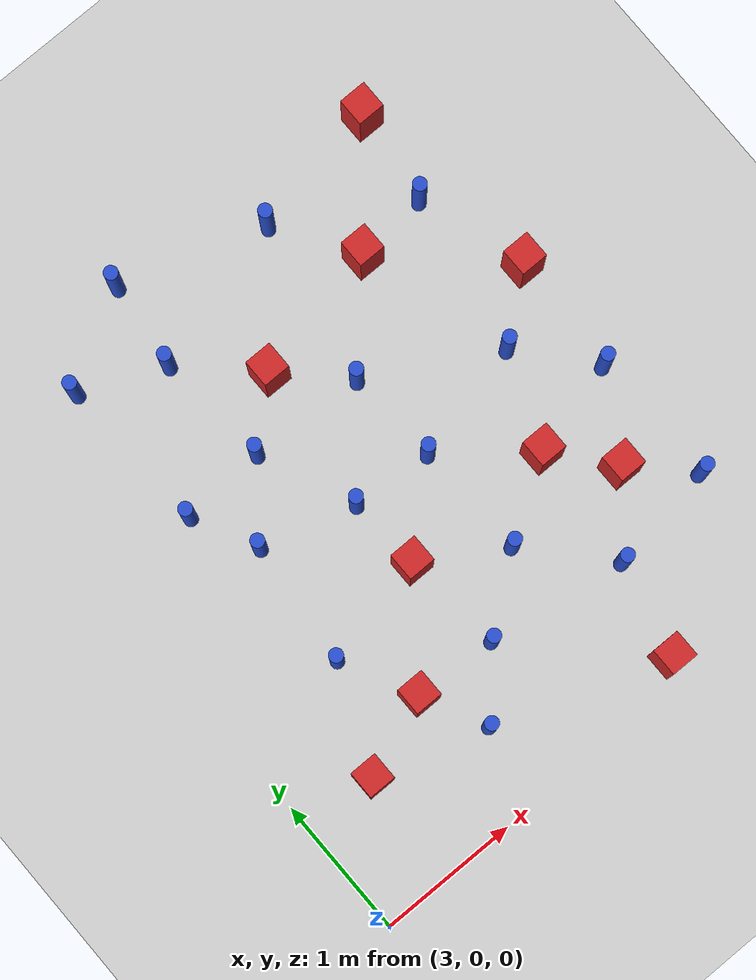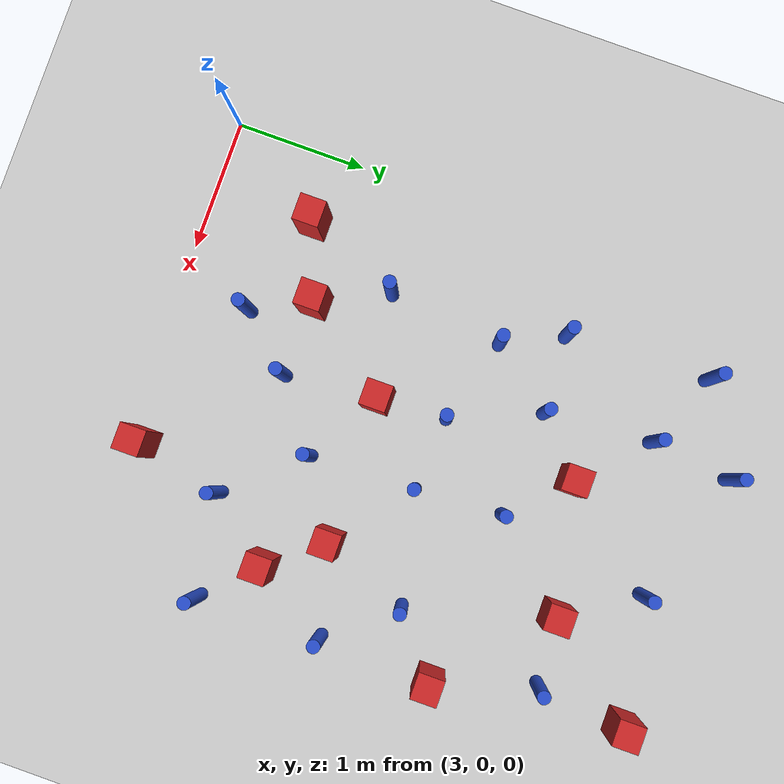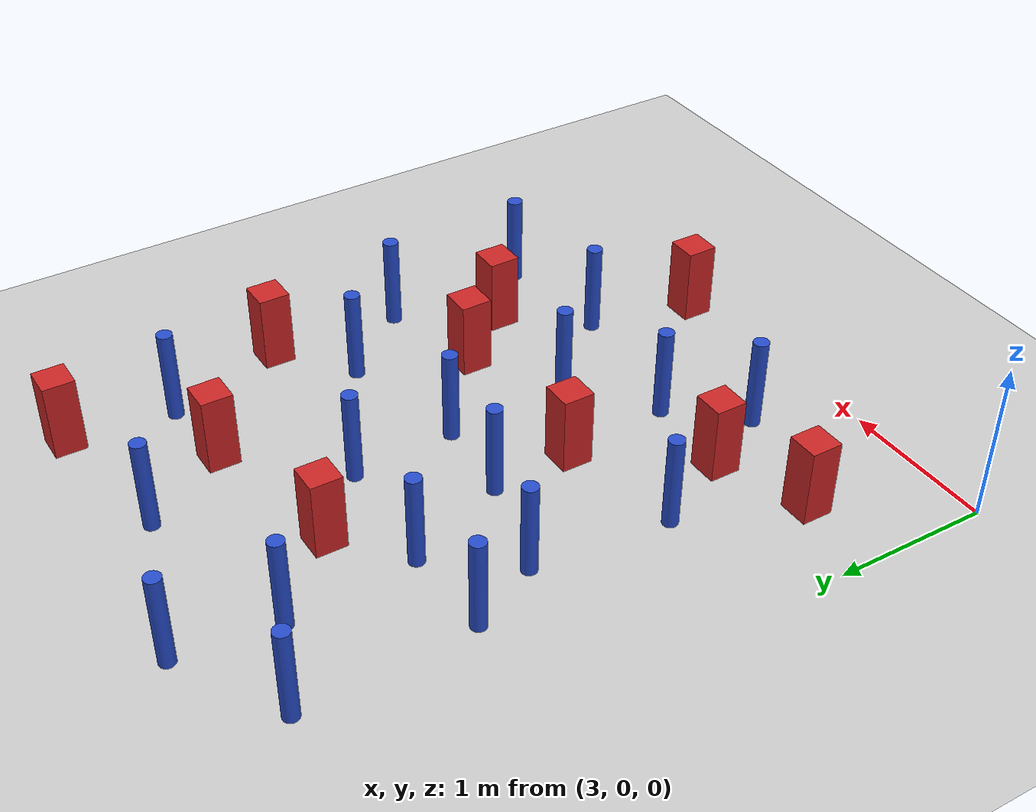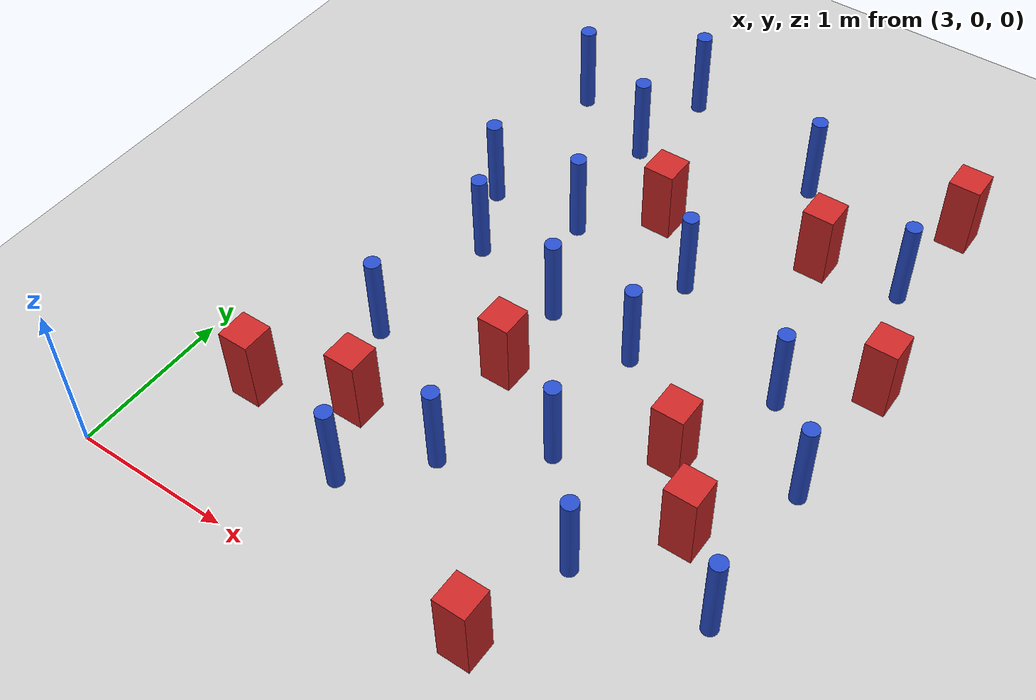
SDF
<sdf version="1.6">
 <world name="default">
  <model name="ground_plane">
   <static>1</static>
   <link name="link">
    <collision name="collision">
     <geometry><plane><normal>0 0 1</normal><size>100 100</size></plane></geometry>
     <surface><friction><ode><mu>100</mu><mu2>50</mu2></ode></friction></surface>
    </collision>
    <visual name="visual">
     <cast_shadows>0</cast_shadows>
     <geometry><plane><normal>0 0 1</normal><size>100 100</size></plane></geometry>
     <material>
      <ambient>1.0 1.0 1.0 1.0</ambient>
      <diffuse>0.8 0.8 0.8 1.0</diffuse>
      <specular>0.01 0.01 0.01 1.000000</specular>
     </material>
    </visual>
   </link>
  </model>
  <model name="pole_obstacle4">
   <static>true</static>
   <pose>4.31455545916 2.92079606758 -3.09024884793e-07 -7.19054271912e-07 -2.11315075144e-07 -1.93935509269e-07</pose>
   <link name="link">
    <pose>0 0 0.3 0 -0 0</pose>
    <inertial>
     <mass>1</mass>
     <inertia><ixx>0.145833</ixx><ixy>0</ixy><ixz>0</ixz><iyy>0.145833</iyy><iyz>0</iyz><izz>0.125</izz></inertia>
    </inertial>
    <collision name="collision">
     <geometry><cylinder><radius>0.05</radius><length>.6</length></cylinder></geometry>
    </collision>
    <visual name="visual">
     <geometry><cylinder><radius>0.05</radius><length>.6</length></cylinder></geometry>
     <material>
      <script><name>Gazebo/Blue</name><uri>file://media/materials/scripts/gazebo.material</uri></script>
     </material>
    </visual>
   </link>
  </model>
  <model name="pole_obstacle30">
   <static>true</static>
   <pose>5.6883734947 0.833998870082 -3.09024884793e-07 -7.19054271912e-07 -2.11315075134e-07 -1.93935509265e-07</pose>
   <link name="link">
    <pose>0 0 0.3 0 -0 0</pose>
    <inertial>
     <mass>1</mass>
     <inertia><ixx>0.145833</ixx><ixy>0</ixy><ixz>0</ixz><iyy>0.145833</iyy><iyz>0</iyz><izz>0.125</izz></inertia>
    </inertial>
    <collision name="collision">
     <geometry><cylinder><radius>0.05</radius><length>.6</length></cylinder></geometry>
    </collision>
    <visual name="visual">
     <geometry><cylinder><radius>0.05</radius><length>.6</length></cylinder></geometry>
     <material>
      <script><name>Gazebo/Blue</name><uri>file://media/materials/scripts/gazebo.material</uri></script>
     </material>
    </visual>
   </link>
  </model>
  <model name="pole_obstacle31">
   <static>true</static>
   <pose>6.4628553626 0.952704947957 -3.09024884793e-07 -7.19054271912e-07 -2.11315075121e-07 -1.93935509258e-07</pose>
   <link name="link">
    <pose>0 0 0.3 0 -0 0</pose>
    <inertial>
     <mass>1</mass>
     <inertia><ixx>0.145833</ixx><ixy>0</ixy><ixz>0</ixz><iyy>0.145833</iyy><iyz>0</iyz><izz>0.125</izz></inertia>
    </inertial>
    <collision name="collision">
     <geometry><cylinder><radius>0.05</radius><length>.6</length></cylinder></geometry>
    </collision>
    <visual name="visual">
     <geometry><cylinder><radius>0.05</radius><length>.6</length></cylinder></geometry>
     <material>
      <script><name>Gazebo/Blue</name><uri>file://media/materials/scripts/gazebo.material</uri></script>
     </material>
    </visual>
   </link>
  </model>
  <model name="square_post_obstacle24">
   <static>true</static>
   <pose>5.75669852665 1.72912787359 -4.36207812815e-07 3.75137919937e-06 9.77721102514e-07 2.47381364184e-05</pose>
   <link name="link">
    <pose>0 0 0.25 0 -0 0</pose>
    <inertial>
     <mass>100</mass>
     <inertia>
      <ixx>0.166667</ixx>
      <ixy>0</ixy>
      <ixz>0</ixz>
      <iyy>0.166667</iyy>
      <iyz>0</iyz>
      <izz>0.166667</izz>
     </inertia>
    </inertial>
    <collision name="collision"><geometry><box><size>.2 .2 .5</size></box></geometry></collision>
    <visual name="visual">
     <geometry><box><size>.2 .2 .5</size></box></geometry>
     <material>
      <script><name>Gazebo/Red</name><uri>file://media/materials/scripts/gazebo.material</uri></script>
     </material>
    </visual>
   </link>
  </model>
  <model name="pole_obstacle39">
   <static>true</static>
   <pose>4.69946434895 0.99012826212 -3.09024884793e-07 -7.19054271912e-07 -2.11315075121e-07 -1.93935509258e-07</pose>
   <link name="link">
    <pose>0 0 0.3 0 -0 0</pose>
    <inertial>
     <mass>1</mass>
     <inertia><ixx>0.145833</ixx><ixy>0</ixy><ixz>0</ixz><iyy>0.145833</iyy><iyz>0</iyz><izz>0.125</izz></inertia>
    </inertial>
    <collision name="collision">
     <geometry><cylinder><radius>0.05</radius><length>.6</length></cylinder></geometry>
    </collision>
    <visual name="visual">
     <geometry><cylinder><radius>0.05</radius><length>.6</length></cylinder></geometry>
     <material>
      <script><name>Gazebo/Blue</name><uri>file://media/materials/scripts/gazebo.material</uri></script>
     </material>
    </visual>
   </link>
  </model>
  <model name="pole_obstacle48">
   <static>true</static>
   <pose>4.32806337356 0.573420995363 -3.09024884793e-07 -7.19054271912e-07 -2.11315075134e-07 -1.93935509265e-07</pose>
   <link name="link">
    <pose>0 0 0.3 0 -0 0</pose>
    <inertial>
     <mass>1</mass>
     <inertia><ixx>0.145833</ixx><ixy>0</ixy><ixz>0</ixz><iyy>0.145833</iyy><iyz>0</iyz><izz>0.125</izz></inertia>
    </inertial>
    <collision name="collision">
     <geometry><cylinder><radius>0.05</radius><length>.6</length></cylinder></geometry>
    </collision>
    <visual name="visual">
     <geometry><cylinder><radius>0.05</radius><length>.6</length></cylinder></geometry>
     <material>
      <script><name>Gazebo/Blue</name><uri>file://media/materials/scripts/gazebo.material</uri></script>
     </material>
    </visual>
   </link>
  </model>
  <model name="square_post_obstacle43">
   <static>true</static>
   <pose>4.10786800772 1.02498283134 -4.36207812815e-07 3.75137919937e-06 9.77721102514e-07 2.47381364184e-05</pose>
   <link name="link">
    <pose>0 0 0.25 0 -0 0</pose>
    <inertial>
     <mass>100</mass>
     <inertia>
      <ixx>0.166667</ixx>
      <ixy>0</ixy>
      <ixz>0</ixz>
      <iyy>0.166667</iyy>
      <iyz>0</iyz>
      <izz>0.166667</izz>
     </inertia>
    </inertial>
    <collision name="collision"><geometry><box><size>.2 .2 .5</size></box></geometry></collision>
    <visual name="visual">
     <geometry><box><size>.2 .2 .5</size></box></geometry>
     <material>
      <script><name>Gazebo/Red</name><uri>file://media/materials/scripts/gazebo.material</uri></script>
     </material>
    </visual>
   </link>
  </model>
  <model name="pole_obstacle73">
   <static>true</static>
   <pose>4.32288337281 4.38044148047 -3.09024884793e-07 -7.19054271911e-07 -2.1131507516e-07 -1.93935509277e-07</pose>
   <link name="link">
    <pose>0 0 0.3 0 -0 0</pose>
    <inertial>
     <mass>1</mass>
     <inertia><ixx>0.145833</ixx><ixy>0</ixy><ixz>0</ixz><iyy>0.145833</iyy><iyz>0</iyz><izz>0.125</izz></inertia>
    </inertial>
    <collision name="collision">
     <geometry><cylinder><radius>0.05</radius><length>.6</length></cylinder></geometry>
    </collision>
    <visual name="visual">
     <geometry><cylinder><radius>0.05</radius><length>.6</length></cylinder></geometry>
     <material>
      <script><name>Gazebo/Blue</name><uri>file://media/materials/scripts/gazebo.material</uri></script>
     </material>
    </visual>
   </link>
  </model>
  <model name="square_post_obstacle73">
   <static>true</static>
   <pose>3.53665921316 0.809654271175 -4.36207812815e-07 3.75137919937e-06 9.77721102514e-07 2.47381364184e-05</pose>
   <link name="link">
    <pose>0 0 0.25 0 -0 0</pose>
    <inertial>
     <mass>100</mass>
     <inertia>
      <ixx>0.166667</ixx>
      <ixy>0</ixy>
      <ixz>0</ixz>
      <iyy>0.166667</iyy>
      <iyz>0</iyz>
      <izz>0.166667</izz>
     </inertia>
    </inertial>
    <collision name="collision"><geometry><box><size>.2 .2 .5</size></box></geometry></collision>
    <visual name="visual">
     <geometry><box><size>.2 .2 .5</size></box></geometry>
     <material>
      <script><name>Gazebo/Red</name><uri>file://media/materials/scripts/gazebo.material</uri></script>
     </material>
    </visual>
   </link>
  </model>
  <model name="square_post_obstacle74">
   <static>true</static>
   <pose>6.08530940527 1.32384995775 -4.36207812815e-07 3.75137919937e-06 9.77721102514e-07 2.47381364184e-05</pose>
   <link name="link">
    <pose>0 0 0.25 0 -0 0</pose>
    <inertial>
     <mass>100</mass>
     <inertia>
      <ixx>0.166667</ixx>
      <ixy>0</ixy>
      <ixz>0</ixz>
      <iyy>0.166667</iyy>
      <iyz>0</iyz>
      <izz>0.166667</izz>
     </inertia>
    </inertial>
    <collision name="collision"><geometry><box><size>.2 .2 .5</size></box></geometry></collision>
    <visual name="visual">
     <geometry><box><size>.2 .2 .5</size></box></geometry>
     <material>
      <script><name>Gazebo/Red</name><uri>file://media/materials/scripts/gazebo.material</uri></script>
     </material>
    </visual>
   </link>
  </model>
  <model name="pole_obstacle89">
   <static>true</static>
   <pose>5.17434374706 2.20109666502 -3.09024884793e-07 -7.19054271912e-07 -2.11315075144e-07 -1.93935509269e-07</pose>
   <link name="link">
    <pose>0 0 0.3 0 -0 0</pose>
    <inertial>
     <mass>1</mass>
     <inertia><ixx>0.145833</ixx><ixy>0</ixy><ixz>0</ixz><iyy>0.145833</iyy><iyz>0</iyz><izz>0.125</izz></inertia>
    </inertial>
    <collision name="collision">
     <geometry><cylinder><radius>0.05</radius><length>.6</length></cylinder></geometry>
    </collision>
    <visual name="visual">
     <geometry><cylinder><radius>0.05</radius><length>.6</length></cylinder></geometry>
     <material>
      <script><name>Gazebo/Blue</name><uri>file://media/materials/scripts/gazebo.material</uri></script>
     </material>
    </visual>
   </link>
  </model>
  <model name="pole_obstacle93">
   <static>true</static>
   <pose>4.60090280616 2.24381102893 -3.09024884793e-07 -7.19054271912e-07 -2.11315075144e-07 -1.93935509269e-07</pose>
   <link name="link">
    <pose>0 0 0.3 0 -0 0</pose>
    <inertial>
     <mass>1</mass>
     <inertia><ixx>0.145833</ixx><ixy>0</ixy><ixz>0</ixz><iyy>0.145833</iyy><iyz>0</iyz><izz>0.125</izz></inertia>
    </inertial>
    <collision name="collision">
     <geometry><cylinder><radius>0.05</radius><length>.6</length></cylinder></geometry>
    </collision>
    <visual name="visual">
     <geometry><cylinder><radius>0.05</radius><length>.6</length></cylinder></geometry>
     <material>
      <script><name>Gazebo/Blue</name><uri>file://media/materials/scripts/gazebo.material</uri></script>
     </material>
    </visual>
   </link>
  </model>
  <model name="pole_obstacle106">
   <static>true</static>
   <pose>5.13529515188 2.87699589242 -3.09024884793e-07 -7.19054271912e-07 -2.11315075144e-07 -1.93935509269e-07</pose>
   <link name="link">
    <pose>0 0 0.3 0 -0 0</pose>
    <inertial>
     <mass>1</mass>
     <inertia><ixx>0.145833</ixx><ixy>0</ixy><ixz>0</ixz><iyy>0.145833</iyy><iyz>0</iyz><izz>0.125</izz></inertia>
    </inertial>
    <collision name="collision">
     <geometry><cylinder><radius>0.05</radius><length>.6</length></cylinder></geometry>
    </collision>
    <visual name="visual">
     <geometry><cylinder><radius>0.05</radius><length>.6</length></cylinder></geometry>
     <material>
      <script><name>Gazebo/Blue</name><uri>file://media/materials/scripts/gazebo.material</uri></script>
     </material>
    </visual>
   </link>
  </model>
  <model name="pole_obstacle113">
   <static>true</static>
   <pose>6.23177568906 3.54276909589 -3.09024884793e-07 -7.19054271912e-07 -2.11315075144e-07 -1.93935509269e-07</pose>
   <link name="link">
    <pose>0 0 0.3 0 -0 0</pose>
    <inertial>
     <mass>1</mass>
     <inertia><ixx>0.145833</ixx><ixy>0</ixy><ixz>0</ixz><iyy>0.145833</iyy><iyz>0</iyz><izz>0.125</izz></inertia>
    </inertial>
    <collision name="collision">
     <geometry><cylinder><radius>0.05</radius><length>.6</length></cylinder></geometry>
    </collision>
    <visual name="visual">
     <geometry><cylinder><radius>0.05</radius><length>.6</length></cylinder></geometry>
     <material>
      <script><name>Gazebo/Blue</name><uri>file://media/materials/scripts/gazebo.material</uri></script>
     </material>
    </visual>
   </link>
  </model>
  <model name="pole_obstacle114">
   <static>true</static>
   <pose>5.35019446583 4.05414884857 -3.09024884793e-07 -7.19054271911e-07 -2.1131507516e-07 -1.93935509277e-07</pose>
   <link name="link">
    <pose>0 0 0.3 0 -0 0</pose>
    <inertial>
     <mass>1</mass>
     <inertia><ixx>0.145833</ixx><ixy>0</ixy><ixz>0</ixz><iyy>0.145833</iyy><iyz>0</iyz><izz>0.125</izz></inertia>
    </inertial>
    <collision name="collision">
     <geometry><cylinder><radius>0.05</radius><length>.6</length></cylinder></geometry>
    </collision>
    <visual name="visual">
     <geometry><cylinder><radius>0.05</radius><length>.6</length></cylinder></geometry>
     <material>
      <script><name>Gazebo/Blue</name><uri>file://media/materials/scripts/gazebo.material</uri></script>
     </material>
    </visual>
   </link>
  </model>
  <model name="square_post_obstacle114">
   <static>true</static>
   <pose>5.70150895306 3.49062618616 -4.36207812815e-07 3.75137919937e-06 9.77721102514e-07 2.47381364184e-05</pose>
   <link name="link">
    <pose>0 0 0.25 0 -0 0</pose>
    <inertial>
     <mass>100</mass>
     <inertia>
      <ixx>0.166667</ixx>
      <ixy>0</ixy>
      <ixz>0</ixz>
      <iyy>0.166667</iyy>
      <iyz>0</iyz>
      <izz>0.166667</izz>
     </inertia>
    </inertial>
    <collision name="collision"><geometry><box><size>.2 .2 .5</size></box></geometry></collision>
    <visual name="visual">
     <geometry><box><size>.2 .2 .5</size></box></geometry>
     <material>
      <script><name>Gazebo/Red</name><uri>file://media/materials/scripts/gazebo.material</uri></script>
     </material>
    </visual>
   </link>
  </model>
  <model name="pole_obstacle128">
   <static>true</static>
   <pose>5.20387048082 1.37830320396 -3.09024884793e-07 -7.19054271912e-07 -2.11315075124e-07 -1.93935509261e-07</pose>
   <link name="link">
    <pose>0 0 0.3 0 -0 0</pose>
    <inertial>
     <mass>1</mass>
     <inertia><ixx>0.145833</ixx><ixy>0</ixy><ixz>0</ixz><iyy>0.145833</iyy><iyz>0</iyz><izz>0.125</izz></inertia>
    </inertial>
    <collision name="collision">
     <geometry><cylinder><radius>0.05</radius><length>.6</length></cylinder></geometry>
    </collision>
    <visual name="visual">
     <geometry><cylinder><radius>0.05</radius><length>.6</length></cylinder></geometry>
     <material>
      <script><name>Gazebo/Blue</name><uri>file://media/materials/scripts/gazebo.material</uri></script>
     </material>
    </visual>
   </link>
  </model>
  <model name="pole_obstacle135">
   <static>true</static>
   <pose>4.24840533065 3.75017123607 -3.09024884793e-07 -7.19054271912e-07 -2.11315075144e-07 -1.93935509269e-07</pose>
   <link name="link">
    <pose>0 0 0.3 0 -0 0</pose>
    <inertial>
     <mass>1</mass>
     <inertia><ixx>0.145833</ixx><ixy>0</ixy><ixz>0</ixz><iyy>0.145833</iyy><iyz>0</iyz><izz>0.125</izz></inertia>
    </inertial>
    <collision name="collision">
     <geometry><cylinder><radius>0.05</radius><length>.6</length></cylinder></geometry>
    </collision>
    <visual name="visual">
     <geometry><cylinder><radius>0.05</radius><length>.6</length></cylinder></geometry>
     <material>
      <script><name>Gazebo/Blue</name><uri>file://media/materials/scripts/gazebo.material</uri></script>
     </material>
    </visual>
   </link>
  </model>
  <model name="pole_obstacle138">
   <static>true</static>
   <pose>3.93393966848 2.43008920307 -3.09024884793e-07 -7.19054271912e-07 -2.11315075144e-07 -1.93935509271e-07</pose>
   <link name="link">
    <pose>0 0 0.3 0 -0 0</pose>
    <inertial>
     <mass>1</mass>
     <inertia><ixx>0.145833</ixx><ixy>0</ixy><ixz>0</ixz><iyy>0.145833</iyy><iyz>0</iyz><izz>0.125</izz></inertia>
    </inertial>
    <collision name="collision">
     <geometry><cylinder><radius>0.05</radius><length>.6</length></cylinder></geometry>
    </collision>
    <visual name="visual">
     <geometry><cylinder><radius>0.05</radius><length>.6</length></cylinder></geometry>
     <material>
      <script><name>Gazebo/Blue</name><uri>file://media/materials/scripts/gazebo.material</uri></script>
     </material>
    </visual>
   </link>
  </model>
  <model name="pole_obstacle139">
   <static>true</static>
   <pose>3.84753379405 1.54200146812 -3.09024884793e-07 -7.19054271912e-07 -2.11315075122e-07 -1.93935509259e-07</pose>
   <link name="link">
    <pose>0 0 0.3 0 -0 0</pose>
    <inertial>
     <mass>1</mass>
     <inertia><ixx>0.145833</ixx><ixy>0</ixy><ixz>0</ixz><iyy>0.145833</iyy><iyz>0</iyz><izz>0.125</izz></inertia>
    </inertial>
    <collision name="collision">
     <geometry><cylinder><radius>0.05</radius><length>.6</length></cylinder></geometry>
    </collision>
    <visual name="visual">
     <geometry><cylinder><radius>0.05</radius><length>.6</length></cylinder></geometry>
     <material>
      <script><name>Gazebo/Blue</name><uri>file://media/materials/scripts/gazebo.material</uri></script>
     </material>
    </visual>
   </link>
  </model>
  <model name="pole_obstacle141">
   <static>true</static>
   <pose>6.0278730968 2.40045363438 -3.09024884793e-07 -7.19054271912e-07 -2.11315075144e-07 -1.93935509269e-07</pose>
   <link name="link">
    <pose>0 0 0.3 0 -0 0</pose>
    <inertial>
     <mass>1</mass>
     <inertia><ixx>0.145833</ixx><ixy>0</ixy><ixz>0</ixz><iyy>0.145833</iyy><iyz>0</iyz><izz>0.125</izz></inertia>
    </inertial>
    <collision name="collision">
     <geometry><cylinder><radius>0.05</radius><length>.6</length></cylinder></geometry>
    </collision>
    <visual name="visual">
     <geometry><cylinder><radius>0.05</radius><length>.6</length></cylinder></geometry>
     <material>
      <script><name>Gazebo/Blue</name><uri>file://media/materials/scripts/gazebo.material</uri></script>
     </material>
    </visual>
   </link>
  </model>
  <model name="square_post_obstacle142">
   <static>true</static>
   <pose>4.63086352221 1.71574439289 -4.36207812815e-07 3.75137919937e-06 9.77721102514e-07 2.47381364184e-05</pose>
   <link name="link">
    <pose>0 0 0.25 0 -0 0</pose>
    <inertial>
     <mass>100</mass>
     <inertia>
      <ixx>0.166667</ixx>
      <ixy>0</ixy>
      <ixz>0</ixz>
      <iyy>0.166667</iyy>
      <iyz>0</iyz>
      <izz>0.166667</izz>
     </inertia>
    </inertial>
    <collision name="collision"><geometry><box><size>.2 .2 .5</size></box></geometry></collision>
    <visual name="visual">
     <geometry><box><size>.2 .2 .5</size></box></geometry>
     <material>
      <script><name>Gazebo/Red</name><uri>file://media/materials/scripts/gazebo.material</uri></script>
     </material>
    </visual>
   </link>
  </model>
  <model name="square_post_obstacle144">
   <static>true</static>
   <pose>6.30433250935 4.21684514954 -4.36207812815e-07 3.75137919937e-06 9.77721102514e-07 2.47381364184e-05</pose>
   <link name="link">
    <pose>0 0 0.25 0 -0 0</pose>
    <inertial>
     <mass>100</mass>
     <inertia>
      <ixx>0.166667</ixx>
      <ixy>0</ixy>
      <ixz>0</ixz>
      <iyy>0.166667</iyy>
      <iyz>0</iyz>
      <izz>0.166667</izz>
     </inertia>
    </inertial>
    <collision name="collision"><geometry><box><size>.2 .2 .5</size></box></geometry></collision>
    <visual name="visual">
     <geometry><box><size>.2 .2 .5</size></box></geometry>
     <material>
      <script><name>Gazebo/Red</name><uri>file://media/materials/scripts/gazebo.material</uri></script>
     </material>
    </visual>
   </link>
  </model>
  <model name="square_post_obstacle159">
   <static>true</static>
   <pose>5.52398424157 0.16212846173 -4.36207812815e-07 3.75137919937e-06 9.77721102514e-07 2.47381364184e-05</pose>
   <link name="link">
    <pose>0 0 0.25 0 -0 0</pose>
    <inertial>
     <mass>100</mass>
     <inertia>
      <ixx>0.166667</ixx>
      <ixy>0</ixy>
      <ixz>0</ixz>
      <iyy>0.166667</iyy>
      <iyz>0</iyz>
      <izz>0.166667</izz>
     </inertia>
    </inertial>
    <collision name="collision"><geometry><box><size>.2 .2 .5</size></box></geometry></collision>
    <visual name="visual">
     <geometry><box><size>.2 .2 .5</size></box></geometry>
     <material>
      <script><name>Gazebo/Red</name><uri>file://media/materials/scripts/gazebo.material</uri></script>
     </material>
    </visual>
   </link>
  </model>
  <model name="pole_obstacle175">
   <static>true</static>
   <pose>3.662071124 3.99630846135 -3.09024884793e-07 -7.19054271912e-07 -2.11315075158e-07 -1.93935509278e-07</pose>
   <link name="link">
    <pose>0 0 0.3 0 -0 0</pose>
    <inertial>
     <mass>1</mass>
     <inertia><ixx>0.145833</ixx><ixy>0</ixy><ixz>0</ixz><iyy>0.145833</iyy><iyz>0</iyz><izz>0.125</izz></inertia>
    </inertial>
    <collision name="collision">
     <geometry><cylinder><radius>0.05</radius><length>.6</length></cylinder></geometry>
    </collision>
    <visual name="visual">
     <geometry><cylinder><radius>0.05</radius><length>.6</length></cylinder></geometry>
     <material>
      <script><name>Gazebo/Blue</name><uri>file://media/materials/scripts/gazebo.material</uri></script>
     </material>
    </visual>
   </link>
  </model>
  <model name="square_post_obstacle204">
   <static>true</static>
   <pose>4.72174248131 3.28304650467 -4.36207812815e-07 3.75137919937e-06 9.77721102514e-07 2.47381364184e-05</pose>
   <link name="link">
    <pose>0 0 0.25 0 -0 0</pose>
    <inertial>
     <mass>100</mass>
     <inertia>
      <ixx>0.166667</ixx>
      <ixy>0</ixy>
      <ixz>0</ixz>
      <iyy>0.166667</iyy>
      <iyz>0</iyz>
      <izz>0.166667</izz>
     </inertia>
    </inertial>
    <collision name="collision"><geometry><box><size>.2 .2 .5</size></box></geometry></collision>
    <visual name="visual">
     <geometry><box><size>.2 .2 .5</size></box></geometry>
     <material>
      <script><name>Gazebo/Red</name><uri>file://media/materials/scripts/gazebo.material</uri></script>
     </material>
    </visual>
   </link>
  </model>
  <model name="pole_obstacle206">
   <static>true</static>
   <pose>6.44181750412 1.90757069085 -3.09024884793e-07 -7.19054271912e-07 -2.11315075124e-07 -1.93935509261e-07</pose>
   <link name="link">
    <pose>0 0 0.3 0 -0 0</pose>
    <inertial>
     <mass>1</mass>
     <inertia><ixx>0.145833</ixx><ixy>0</ixy><ixz>0</ixz><iyy>0.145833</iyy><iyz>0</iyz><izz>0.125</izz></inertia>
    </inertial>
    <collision name="collision">
     <geometry><cylinder><radius>0.05</radius><length>.6</length></cylinder></geometry>
    </collision>
    <visual name="visual">
     <geometry><cylinder><radius>0.05</radius><length>.6</length></cylinder></geometry>
     <material>
      <script><name>Gazebo/Blue</name><uri>file://media/materials/scripts/gazebo.material</uri></script>
     </material>
    </visual>
   </link>
  </model>
  <model name="square_post_obstacle211">
   <static>true</static>
   <pose>6.4744876963 2.7668332864 -4.36207812815e-07 3.75137919937e-06 9.77721102514e-07 2.47381364184e-05</pose>
   <link name="link">
    <pose>0 0 0.25 0 -0 0</pose>
    <inertial>
     <mass>100</mass>
     <inertia>
      <ixx>0.166667</ixx>
      <ixy>0</ixy>
      <ixz>0</ixz>
      <iyy>0.166667</iyy>
      <iyz>0</iyz>
      <izz>0.166667</izz>
     </inertia>
    </inertial>
    <collision name="collision"><geometry><box><size>.2 .2 .5</size></box></geometry></collision>
    <visual name="visual">
     <geometry><box><size>.2 .2 .5</size></box></geometry>
     <material>
      <script><name>Gazebo/Red</name><uri>file://media/materials/scripts/gazebo.material</uri></script>
     </material>
    </visual>
   </link>
  </model>
  <model name="pole_obstacle212">
   <static>true</static>
   <pose>3.71118722387 2.88413768112 -3.09024884793e-07 -7.19054271912e-07 -2.11315075144e-07 -1.93935509271e-07</pose>
   <link name="link">
    <pose>0 0 0.3 0 -0 0</pose>
    <inertial>
     <mass>1</mass>
     <inertia><ixx>0.145833</ixx><ixy>0</ixy><ixz>0</ixz><iyy>0.145833</iyy><iyz>0</iyz><izz>0.125</izz></inertia>
    </inertial>
    <collision name="collision">
     <geometry><cylinder><radius>0.05</radius><length>.6</length></cylinder></geometry>
    </collision>
    <visual name="visual">
     <geometry><cylinder><radius>0.05</radius><length>.6</length></cylinder></geometry>
     <material>
      <script><name>Gazebo/Blue</name><uri>file://media/materials/scripts/gazebo.material</uri></script>
     </material>
    </visual>
   </link>
  </model>
 </world>
</sdf>
